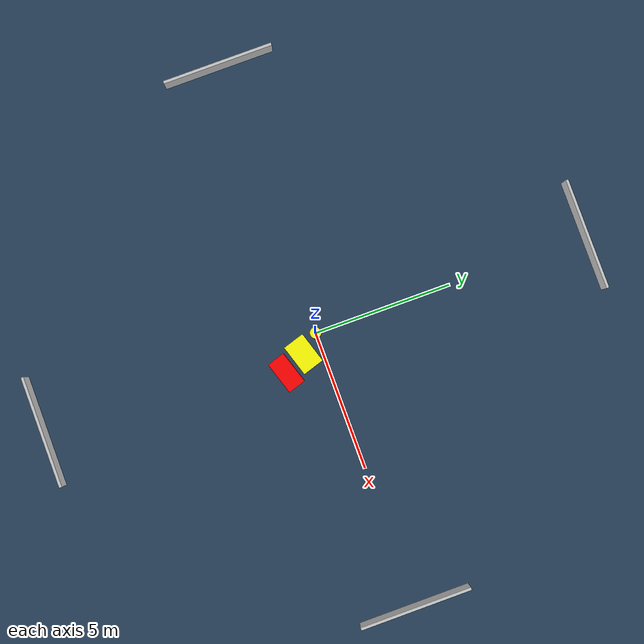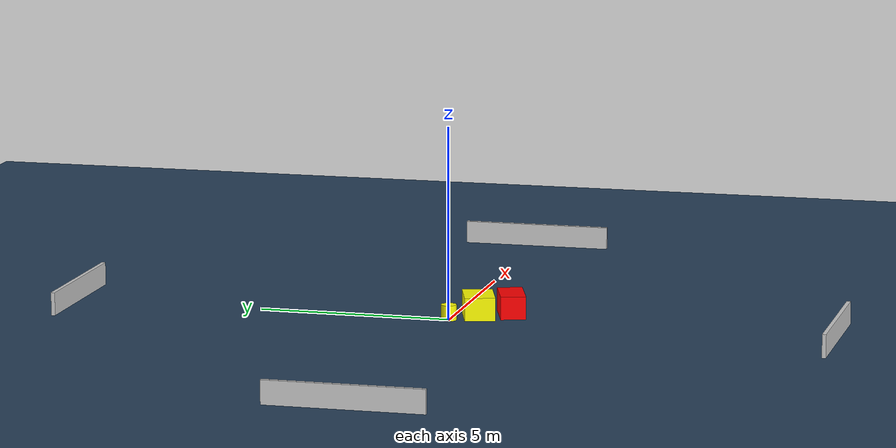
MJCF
<?xml version="1.0" ?>
<mujoco model="generated_environment">
  <option timestep="0.01" integrator="RK4" cone="elliptic"/>
  <default>
    <geom density="1"/>
  </default>
  <asset>
    <texture builtin="gradient" height="3072" name="skybox" rgb1="0.3 0.5 0.7" rgb2="0 0 0" type="skybox" width="512"/>
    <texture builtin="checker" height="300" name="groundplane" rgb1="0.2 0.3 0.4" rgb2="0.1 0.2 0.3" type="2d" width="300"/>
    <material name="groundplane" reflectance="0.2" texrepeat="5 5" texture="groundplane"/>
  </asset>
  <worldbody>
    <light dir="0 0 -1" directional="true" pos="0 0 1.5"/>
    <geom condim="3" friction="0.5 0.005 0.001" material="groundplane" name="floor" pos="0 0 0" size="0 0 0.05" type="plane"/>
    <body name="walls">
      <geom name="wall_1" condim="4" pos="-10.0 0.0 0.3" rgba="0.800000011920929 0.800000011920929 0.800000011920929 1.0" size="0.05 2.0 0.3" type="box"/>
      <geom name="wall_2" condim="4" pos="10.0 0.0 0.3" rgba="0.800000011920929 0.800000011920929 0.800000011920929 1.0" size="0.05 2.0 0.3" type="box"/>
      <geom name="wall_3" condim="4" pos="0.0 -10.0 0.3" rgba="0.800000011920929 0.800000011920929 0.800000011920929 1.0" size="2.0 0.05 0.3" type="box"/>
      <geom name="wall_4" condim="4" pos="0.0 10.0 0.3" rgba="0.800000011920929 0.800000011920929 0.800000011920929 1.0" size="2.0 0.05 0.3" type="box"/>
    </body>
    <body name="robot">
      <joint name="joint_x" type="slide" pos="0 0 0" axis="1 0 0"/>
      <joint name="joint_y" type="slide" pos="0 0 0" axis="0 1 0"/>
      <geom name="robot" type="cylinder" pos="0.0 0.0 0.2" size="0.2 0.2 0.0" mass="5.0" friction="1.0 0.005 0.0001" condim="4" rgba="1.0 1.0 0.0 1.0"/>
    </body>
    <body name="obstacle_1_movable">
      <geom name="obstacle_1_movable" condim="4" pos="0.5567378531113747 -0.6468136020939687 0.3" euler="0 0 107.51029535388167" friction="0.0 0.005 0.001" rgba="1.0 1.0 0.0 1.0" size="0.3956129228400319 0.5720152087569605 0.3" type="box" mass="0.1"/>
      <joint type="free"/>
    </body>
    <body name="obstacle_2_static">
      <geom name="obstacle_2_static" condim="4" pos="0.9617222201263335 -1.4175868219372711 0.3" euler="0 0 107.8916480146936" friction="0.0 0.005 0.001" rgba="1.0 0.0 0.0 1.0" size="0.32624300836114495 0.6009508396494937 0.3" type="box"/>
    </body>
  </worldbody>
  <actuator>
    <motor name="actuator_x" joint="joint_x" gear="1" ctrlrange="-1 1"/>
    <motor name="actuator_y" joint="joint_y" gear="1" ctrlrange="-1 1"/>
  </actuator>
</mujoco>
